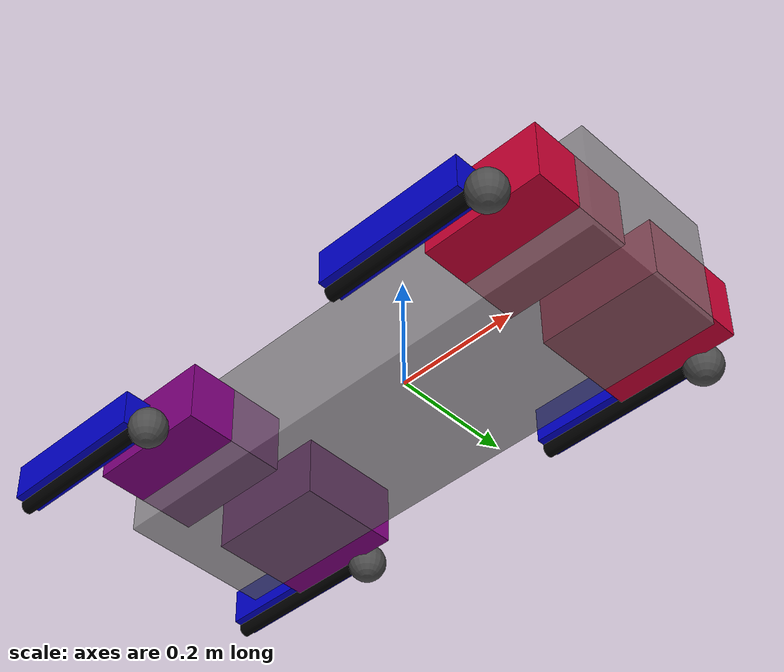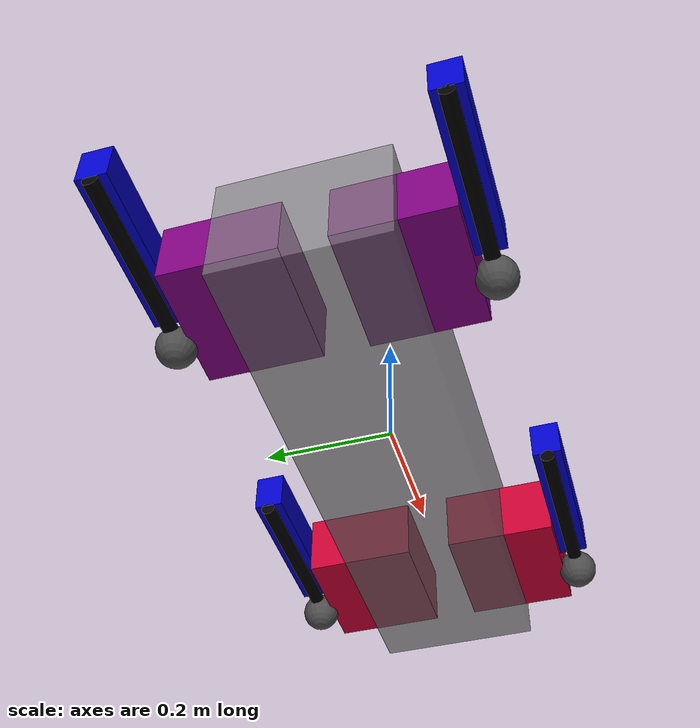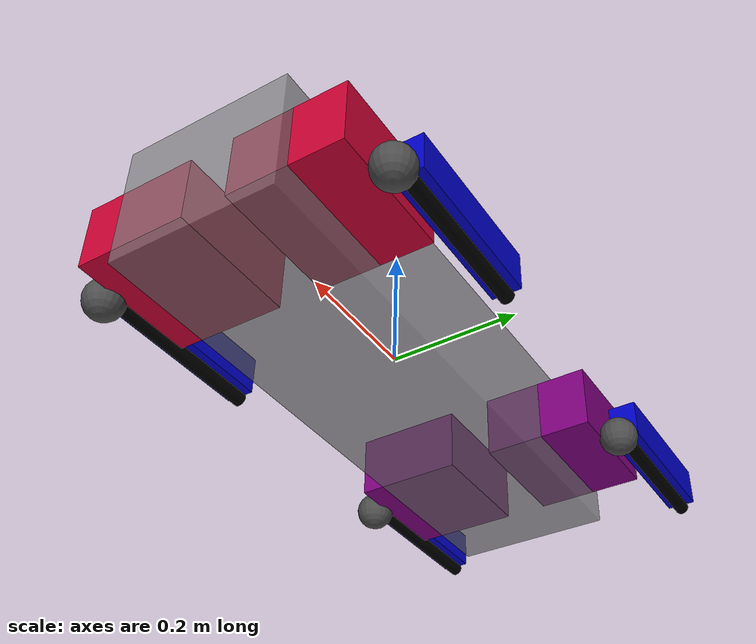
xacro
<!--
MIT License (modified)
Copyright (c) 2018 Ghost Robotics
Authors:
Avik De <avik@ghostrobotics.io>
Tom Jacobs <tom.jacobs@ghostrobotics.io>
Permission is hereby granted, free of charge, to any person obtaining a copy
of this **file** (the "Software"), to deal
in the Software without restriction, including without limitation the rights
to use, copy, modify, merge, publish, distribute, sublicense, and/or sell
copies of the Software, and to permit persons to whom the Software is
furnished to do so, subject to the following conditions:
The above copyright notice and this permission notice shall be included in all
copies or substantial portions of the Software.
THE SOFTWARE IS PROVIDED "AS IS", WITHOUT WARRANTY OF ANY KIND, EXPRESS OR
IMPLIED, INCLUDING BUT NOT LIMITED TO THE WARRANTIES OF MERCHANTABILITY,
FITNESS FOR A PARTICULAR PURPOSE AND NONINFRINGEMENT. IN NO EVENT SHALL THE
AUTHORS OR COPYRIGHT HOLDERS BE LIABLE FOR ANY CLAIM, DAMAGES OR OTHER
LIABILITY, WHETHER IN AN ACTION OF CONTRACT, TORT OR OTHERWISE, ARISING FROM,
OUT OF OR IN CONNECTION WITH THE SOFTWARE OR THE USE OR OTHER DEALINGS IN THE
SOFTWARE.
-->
<?xml version="1.0"?>

<robot xmlns:xacro="http://www.ros.org/wiki/xacro" name="ngr">

	<!-- Define parameters -->
	<xacro:property name="pi" value="3.14159265359"/>
	<xacro:property name="bodyLength" value="0.88"/>
	<xacro:property name="bodyWidth" value="0.25"/>
	<xacro:property name="bodyHeight" value="0.19"/>
	<xacro:property name="bodyMass" value="12"/>
	<xacro:property name="upperLegMass" value="0.625"/>
	<xacro:property name="lowerLegMass" value="0.2"/>
	<xacro:property name="toeMass" value="0.15"/>
	<xacro:property name="upperLegLength" value="0.25"/>
	<xacro:property name="upperLegWidth" value="0.044"/>
	<xacro:property name="upperLegHeight" value="0.060"/>
	<xacro:property name="lowerLegLength" value="0.28"/>
	<xacro:property name="lowerLegRadius" value="0.011"/>
	<xacro:property name="lowerLegAttachLinkLength" value="0.0355"/>
	<xacro:property name="podMass" value="2.75"/>
	<xacro:property name="podLength" value="0.195"/>
	<xacro:property name="podWidth" value="0.170"/>
	<xacro:property name="podHeight" value="0.1"/>
	<xacro:property name="dPodAxisToEdge" value="0.046"/>
	<xacro:property name="dx" value="0.325"/>
	<xacro:property name="dy" value="0.1575"/>
	<xacro:property name="toeRadius" value="0.03"/>
	<xacro:property name="toeOffset" value="0.0106"/>
	<xacro:property name="toeStiffness" value="30000.0"/>
	<xacro:property name="toeDamping" value="1000.0"/>
	<xacro:property name="toeSpinningFriction" value="0.3"/>
	<xacro:property name="toeLateralFriction" value="3.0"/>
	<xacro:property name="abKinLimit" value="0.43"/>
	<xacro:property name="abSpeedLimit" value="8.6"/>
	<xacro:property name="abEffortLimit" value="375"/>
	<xacro:property name="jointSpeedLimit" value="30"/>
	<xacro:property name="jointEffortLimit" value="87.5"/>

	<!-- Define materials -->
	<material name="gray">
		<color rgba="0.5 0.5 0.5 0.7"/>
	</material>
	<material name="darkgray">
		<color rgba="0.3 0.3 0.3 1.0"/>
	</material>
	<material name="blue">
		<color rgba="0 0 0.8 1"/>
	</material>
	<material name="black">
		<color rgba="0 0 0 1"/>
	</material>
	<material name="purple">
		<color rgba="0.5 0.0 0.5 1.0"/>
	</material>
	<material name="red">
		<color rgba="0.8 0.0 0.2 1.0"/>
	</material>

	<!-- Body -->
	<link name="body">
		<visual>
			<origin rpy="0 0 0" xyz="0 0 0"/>
			<geometry>
				<box size="${bodyLength} ${bodyWidth} ${bodyHeight}"/>
			</geometry>
			<material name="gray"/>
		</visual>

		<inertial>
			<mass value="${bodyMass}"/>
			<!-- Uniform box -->
			<inertia ixx="0.0986"  ixy="0"  ixz="0" iyy="0.8105" iyz="0" izz="0.8369" />
		</inertial>

		<!-- Just copy geometry for collision -->
		<collision>
			<geometry>
				<box size="0.05 ${bodyWidth} ${bodyHeight}"/>
			</geometry>
		</collision>
	</link>

	<!-- Define our leg macro -->
	<xacro:macro name="leg" params="suffix left front hipJointName kneeJointName abductionJointName hipJointLowerLimit hipJointUpperLimit">

		<!-- Hip motor -->
		<link name="hip${suffix}">
			<visual>
				<origin rpy="${pi/2} 0 0" xyz="0.0 ${left * (dPodAxisToEdge - podWidth/2) + left*0.15*0.0} 0"/>
				<geometry>
					<box size="${podLength} ${podHeight} ${podWidth}"/>
				</geometry>
				<material name="purple"/>
			</visual>

			<collision>
				<origin rpy="${pi/2} 0 0" xyz="0.0 ${left * (dPodAxisToEdge - podWidth/2)} 0"/>
				<geometry>
					<box size="${podLength} ${podHeight} ${podWidth}"/>
				</geometry>
			</collision>

			<inertial>
				<mass value="${podMass}"/>
				<inertia ixx="0.00891458"  ixy="0"  ixz="0" iyy="0.0100573" iyz="0" izz="0.01533698" />
			</inertial>
		</link>

		<!-- Abduction joint. Joint names are: 8 9 10 11 -->
		<joint name="${abductionJointName}" type="revolute">
			<parent link="body"/>
			<child link="hip${suffix}"/>
			<axis xyz="1 0 0"/>
			<origin xyz="${front * dx} ${left * dy} 0"/>
			<limit effort="${abEffortLimit}" velocity="${abSpeedLimit}" lower="${-abKinLimit}" upper="${abKinLimit}"/>
			<dynamics damping="0.0" friction="0.0"/>
		</joint>

		<!-- Upper leg -->
		<link name="upper${suffix}">
			<visual>
				<origin rpy="0 0 0" xyz="-${upperLegLength/2} ${left*0.2*0.0} 0"/>
				<geometry>
					<box size="${upperLegLength} ${upperLegWidth} ${upperLegHeight}"/>
				</geometry>
				<material name="blue"/>
			</visual>

			<collision>
				<origin rpy="0 0 0" xyz="-${upperLegLength/2} 0 0"/>
				<geometry>
					<box size="${upperLegLength} ${upperLegWidth} ${upperLegHeight}"/>
				</geometry>
			</collision>

			<inertial>
				<mass value="${upperLegMass}"/>
				<inertia ixx="0.0003125"  ixy="0" ixz="0" iyy="0.0040625" iyz="0" izz="0.0040625" />
			</inertial>
		</link>

		<!-- Hip joint. (Motor to upper leg). Joint names are: 0 2 4 6 -->
		<joint name="${hipJointName}" type="revolute">
			<parent link="hip${suffix}"/>
			<child link="upper${suffix}"/>
			<axis xyz="0 -1 0"/>
			<origin xyz="0 ${left * (dPodAxisToEdge + upperLegWidth/2)} 0"/> <!--  rpy="0 -0.3 0" -->
			<limit effort="${jointEffortLimit}" velocity="${jointSpeedLimit}" lower="${-pi}" upper="${pi}"/>
			<dynamics damping="0.0" friction="0.0"/>
		</joint>

		<!-- Lower leg -->
		<link name="lower${suffix}">
			<visual>
				<origin rpy="0 ${pi/2} 0" xyz="${lowerLegLength/2} 0 -${lowerLegAttachLinkLength}"/>
				<geometry>
					<cylinder length="${lowerLegLength}" radius="${lowerLegRadius}"/>
				</geometry>
				<material name="black"/>
			</visual>

			<collision>
				<origin rpy="0 ${pi/2} 0" xyz="${lowerLegLength/2} 0 -${lowerLegAttachLinkLength}"/>
				<geometry>
					<cylinder length="${lowerLegLength}" radius="${lowerLegRadius}"/>
				</geometry>
			</collision>

			<inertial>
				<mass value="${lowerLegMass}"/>
				<inertia ixx="0.00131075"  ixy="0"  ixz="0" iyy="0.00131075" iyz="0" izz="0.0001" />
			</inertial>
		</link>

		<!-- Knee joint. Joint names are: 1 3 5 7 -->
		<joint name="${kneeJointName}" type="revolute">
			<parent link="upper${suffix}"/>
			<child link="lower${suffix}"/>
			<axis xyz="0 1 0"/>
			<origin xyz="-${upperLegLength} 0 0"/> <!--rpy="0 0.5 0"-->
			<limit effort="${jointEffortLimit}" velocity="${jointSpeedLimit}" lower="0" upper="${pi}"/>
			<dynamics damping="0.0" friction="0.0"/>
		</joint>

		<!-- Toe -->
		<link name="toe${suffix}">
			<contact>
				<friction_anchor/>
				<stiffness value="${toeStiffness}"/>
				<damping value="${toeDamping}"/>
				<spinning_friction value="${toeSpinningFriction}"/>
				<lateral_friction value="${toeLateralFriction}"/>
			</contact>
			<visual>
				<origin rpy="0 0 0" xyz="0 0 0"/>
				<geometry>
					<sphere radius="${toeRadius}"/>
				</geometry>
				<material name="darkgray"/>
			</visual>

			<collision>
				<origin rpy="0 0 0" xyz="0 0 0"/>
				<geometry>
					<sphere radius="${toeRadius}"/>
				</geometry>
			</collision>

			<inertial>
				<mass value="${toeMass}"/>
				<inertia ixx="0.000025"  ixy="0"  ixz="0" iyy="0.000025" iyz="0" izz="0.000025" />
			</inertial>
		</link>
		<joint name="jtoe${suffix}" type="fixed">
			<parent link="lower${suffix}"/>
			<child link="toe${suffix}"/>
			<origin xyz="${lowerLegLength} 0 -${lowerLegAttachLinkLength + toeOffset}"/>
			<dynamics damping="0.0" friction="0.0"/>
		</joint>

	</xacro:macro>

	<!-- red new legs -->
	<!-- TODO: clean this, it should be part of main leg macro -->

		<!-- Define our leg macro -->
	<xacro:macro name="red_leg" params="suffix left front hipJointName kneeJointName abductionJointName hipJointLowerLimit hipJointUpperLimit">

		<!-- Hip motor -->
		<link name="hip${suffix}">
			<visual>
				<origin rpy="${pi/2} 0 0" xyz="0.0 ${left * (dPodAxisToEdge - podWidth/2) + left*0.15*0.0} 0"/>
				<geometry>
					<box size="${podLength} ${podHeight} ${podWidth}"/>
				</geometry>
				<material name="red"/>
			</visual>

			<collision>
				<origin rpy="${pi/2} 0 0" xyz="0.0 ${left * (dPodAxisToEdge - podWidth/2)} 0"/>
				<geometry>
					<box size="${podLength} ${podHeight} ${podWidth}"/>
				</geometry>
			</collision>

			<inertial>
				<mass value="${podMass}"/>
				<inertia ixx="0.00891458"  ixy="0"  ixz="0" iyy="0.0100573" iyz="0" izz="0.01533698" />
			</inertial>
		</link>

		<!-- Abduction joint. Joint names are: 8 9 10 11 -->
		<joint name="${abductionJointName}" type="revolute">
			<parent link="body"/>
			<child link="hip${suffix}"/>
			<axis xyz="1 0 0"/>
			<origin xyz="${front * dx} ${left * dy} 0"/>
			<limit effort="${abEffortLimit}" velocity="${abSpeedLimit}" lower="${-abKinLimit}" upper="${abKinLimit}"/>
			<dynamics damping="0.0" friction="0.0"/>
		</joint>

		<!-- Upper leg -->
		<link name="upper${suffix}">
			<visual>
				<origin rpy="0 0 0" xyz="-${upperLegLength/2} ${left*0.2*0.0} 0"/>
				<geometry>
					<box size="${upperLegLength} ${upperLegWidth} ${upperLegHeight}"/>
				</geometry>
				<material name="blue"/>
			</visual>

			<collision>
				<origin rpy="0 0 0" xyz="-${upperLegLength/2} 0 0"/>
				<geometry>
					<box size="${upperLegLength} ${upperLegWidth} ${upperLegHeight}"/>
				</geometry>
			</collision>

			<inertial>
				<mass value="${upperLegMass}"/>
				<inertia ixx="0.0003125"  ixy="0" ixz="0" iyy="0.0040625" iyz="0" izz="0.0040625" />
			</inertial>
		</link>

		<!-- Hip joint. (Motor to upper leg). Joint names are: 0 2 4 6 -->
		<joint name="${hipJointName}" type="revolute">
			<parent link="hip${suffix}"/>
			<child link="upper${suffix}"/>
			<axis xyz="0 -1 0"/>
			<origin xyz="0 ${left * (dPodAxisToEdge + upperLegWidth/2)} 0"/> <!--  rpy="0 -0.3 0" -->
			<limit effort="${jointEffortLimit}" velocity="${jointSpeedLimit}" lower="${-pi}" upper="${pi}"/>
			<dynamics damping="0.0" friction="0.0"/>
		</joint>

		<!-- Lower leg -->
		<link name="lower${suffix}">
			<visual>
				<origin rpy="0 ${pi/2} 0" xyz="${lowerLegLength/2} 0 -${lowerLegAttachLinkLength}"/>
				<geometry>
					<cylinder length="${lowerLegLength}" radius="${lowerLegRadius}"/>
				</geometry>
				<material name="black"/>
			</visual>

			<collision>
				<origin rpy="0 ${pi/2} 0" xyz="${lowerLegLength/2} 0 -${lowerLegAttachLinkLength}"/>
				<geometry>
					<cylinder length="${lowerLegLength}" radius="${lowerLegRadius}"/>
				</geometry>
			</collision>

			<inertial>
				<mass value="${lowerLegMass}"/>
				<inertia ixx="0.00131075"  ixy="0"  ixz="0" iyy="0.00131075" iyz="0" izz="0.0001" />
			</inertial>
		</link>

		<!-- Knee joint. Joint names are: 1 3 5 7 -->
		<joint name="${kneeJointName}" type="revolute">
			<parent link="upper${suffix}"/>
			<child link="lower${suffix}"/>
			<axis xyz="0 1 0"/>
			<origin xyz="-${upperLegLength} 0 0"/> <!--rpy="0 0.5 0"-->
			<limit effort="${jointEffortLimit}" velocity="${jointSpeedLimit}" lower="0" upper="${pi}"/>
			<dynamics damping="0.0" friction="0.0"/>
		</joint>

		<!-- Toe -->
		<link name="toe${suffix}">
			<contact>
				<friction_anchor/>
				<stiffness value="${toeStiffness}"/>
				<damping value="${toeDamping}"/>
				<spinning_friction value="${toeSpinningFriction}"/>
				<lateral_friction value="${toeLateralFriction}"/>
			</contact>
			<visual>
				<origin rpy="0 0 0" xyz="0 0 0"/>
				<geometry>
					<sphere radius="${toeRadius}"/>
				</geometry>
				<material name="darkgray"/>
			</visual>

			<collision>
				<origin rpy="0 0 0" xyz="0 0 0"/>
				<geometry>
					<sphere radius="${toeRadius}"/>
				</geometry>
			</collision>

			<inertial>
				<mass value="${toeMass}"/>
				<inertia ixx="0.000025"  ixy="0"  ixz="0" iyy="0.000025" iyz="0" izz="0.000025" />
			</inertial>
		</link>
		<joint name="jtoe${suffix}" type="fixed">
			<parent link="lower${suffix}"/>
			<child link="toe${suffix}"/>
			<origin xyz="${lowerLegLength} 0 -${lowerLegAttachLinkLength + toeOffset}"/>
			<dynamics damping="0.0" friction="0.0"/>
		</joint>

	</xacro:macro>

	<!-- Our four legs -->
	<xacro:red_leg suffix="0" hipJointName="0" kneeJointName="1" abductionJointName="8" front="1" left="1" hipJointLowerLimit="${-pi/2}" hipJointUpperLimit="${3*pi/2}"/>
 	<xacro:leg suffix="1" hipJointName="2" kneeJointName="3" abductionJointName="9" front="-1" left="1" hipJointLowerLimit="${-pi}" hipJointUpperLimit="${pi}"/>
 	<xacro:red_leg suffix="2" hipJointName="4" kneeJointName="5" abductionJointName="10" front="1" left="-1" hipJointLowerLimit="${-pi/2}" hipJointUpperLimit="${3*pi/2}"/>
 	<xacro:leg suffix="3" hipJointName="6" kneeJointName="7" abductionJointName="11" front="-1" left="-1" hipJointLowerLimit="${-pi}" hipJointUpperLimit="${pi}"/>

</robot>
